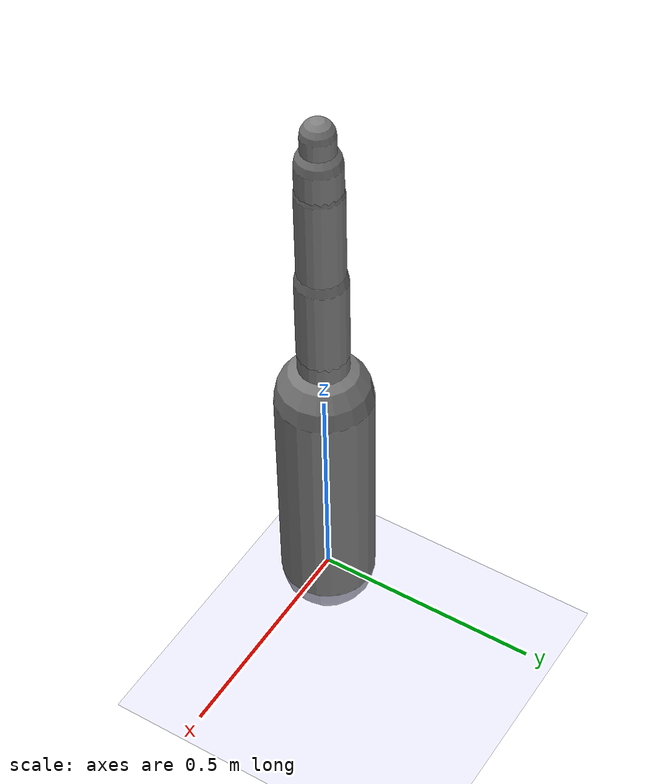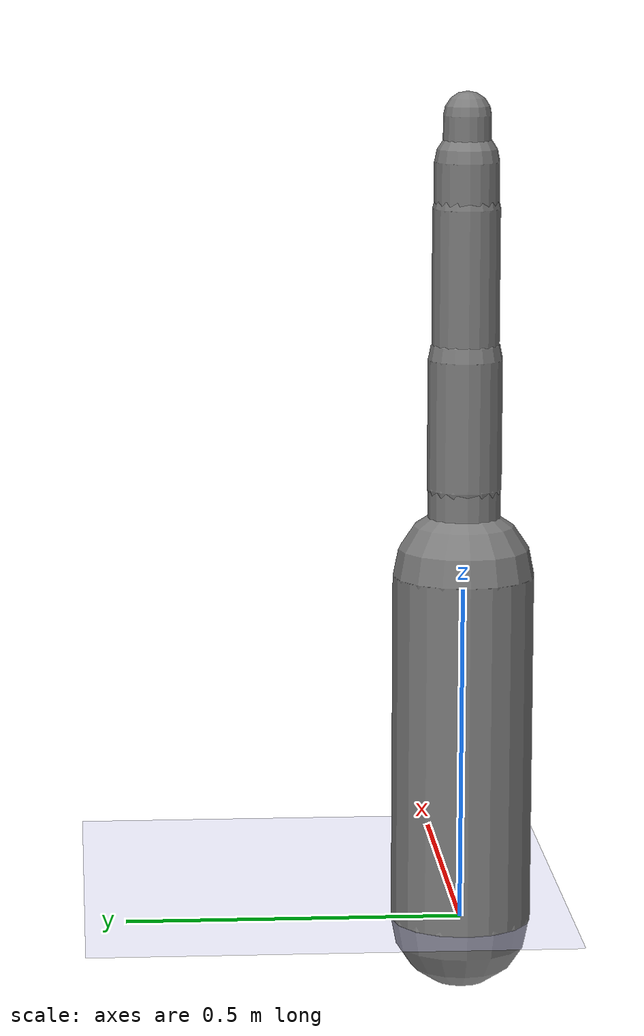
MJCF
<?xml version='1.0' encoding='UTF-8'?>
<mujoco model="robot_model">
  <worldbody>
    <light name="light" pos="0 -3 10" dir="0 0.5 -1" diffuse=".8 .8 .8" specular="0.1 0.1 0.1"/>
    <geom name="floor" type="plane" size="10.0 10.0 0.1" pos="0 0 0" rgba="0.8 0.8 1 1"/>
    <body name="limb0" pos="0 0 0">
      <geom type="capsule" fromto="0 0 0 0 0 0.5231763158945975" size="0.1044002338996304" density="812.2604488337136"/>
      <site type="sphere" size="0.01" name="limb0_site0" pos="0 0 0.023686909147294804"/>
      <site type="sphere" size="0.01" name="limb0_site1" pos="0 0 0.4696436638713048"/>
      <freejoint name="limb0_root"/>
      <body name="limb1" pos="0 0 0.023686909147294804">
        <geom type="capsule" fromto="0 0 0 0 0 0.2533475523142073" size="0.022157228095266258" density="726.7785643359989"/>
        <joint name="joint_limb0_limb1_0" type="hinge" axis="1 0 0" range="-24.875771072716805 24.875771072716805" damping="5.0"/>
      </body>
      <body name="limb2" pos="0 0 0.4696436638713048">
        <geom type="capsule" fromto="0 0 0 0 0 0.2739790208900568" size="0.029380408066792957" density="1179.3489546074043"/>
        <site type="sphere" size="0.01" name="limb2_site0" pos="0 0 0.07437204482819212"/>
        <site type="sphere" size="0.01" name="limb2_site1" pos="0 0 0.10943414208611621"/>
        <body name="limb3" pos="0 0 0.07437204482819212">
          <geom type="capsule" fromto="0 0 0 0 0 0.12432108518322244" size="0.047067574073242635" density="844.4768935365787"/>
          <site type="sphere" size="0.01" name="limb3_site0" pos="0 0 0.1084322870766739"/>
          <body name="limb4" pos="0 0 0.1084322870766739">
            <geom type="capsule" fromto="0 0 0 0 0 0.19092741006436326" size="0.05480354009310013" density="1116.3585915313008"/>
            <site type="sphere" size="0.01" name="limb4_site0" pos="0 0 0.06204045754828538"/>
            <site type="sphere" size="0.01" name="limb4_site1" pos="0 0 0.15253944780773193"/>
            <site type="sphere" size="0.01" name="limb4_site2" pos="0 0 0.0027753743618323277"/>
            <body name="limb5" pos="0 0 0.06204045754828538">
              <geom type="capsule" fromto="0 0 0 0 0 0.2746668208702611" size="0.04013455862214658" density="562.6022688916519"/>
              <joint name="joint_limb4_limb5_0" type="hinge" axis="1 0 0" range="-100.62153310270436 100.62153310270436" damping="5.0"/>
            </body>
            <body name="limb6" pos="0 0 0.15253944780773193">
              <geom type="capsule" fromto="0 0 0 0 0 0.37940479612732436" size="0.025961543341342232" density="758.835280608301"/>
              <joint name="joint_limb4_limb6_0" type="hinge" axis="0 0 1" range="-51.97846543182863 51.97846543182863" damping="5.0"/>
            </body>
            <body name="limb7" pos="0 0 0.0027753743618323277">
              <geom type="capsule" fromto="0 0 0 0 0 0.3025540005686284" size="0.04028272555693565" density="588.9553027166908"/>
              <joint name="joint_limb4_limb7_0" type="hinge" axis="1 0 0" range="-113.32239002254337 113.32239002254337" damping="5.0"/>
            </body>
            <joint name="joint_limb3_limb4_0" type="hinge" axis="0 0 1" range="-21.851721767021075 21.851721767021075" damping="5.0"/>
          </body>
          <joint name="joint_limb2_limb3_0" type="hinge" axis="0 1 0" range="-107.96511733349222 107.96511733349222" damping="5.0"/>
        </body>
        <body name="limb8" pos="0 0 0.10943414208611621">
          <geom type="capsule" fromto="0 0 0 0 0 0.24715229556460672" size="0.05379707205894439" density="1160.8183849566396"/>
          <site type="sphere" size="0.01" name="limb8_site0" pos="0 0 0.11463525533338896"/>
          <site type="sphere" size="0.01" name="limb8_site1" pos="0 0 0.19735687797790924"/>
          <site type="sphere" size="0.01" name="limb8_site2" pos="0 0 0.2325705511597427"/>
          <body name="limb9" pos="0 0 0.11463525533338896">
            <geom type="capsule" fromto="0 0 0 0 0 0.36975588595470515" size="0.04965686680111251" density="947.3641699076786"/>
            <joint name="joint_limb8_limb9_0" type="hinge" axis="0 0 1" range="-84.0940141481311 84.0940141481311" damping="5.0"/>
          </body>
          <body name="limb10" pos="0 0 0.19735687797790924">
            <geom type="capsule" fromto="0 0 0 0 0 0.35415471995628434" size="0.047688890985793195" density="701.2100204701537"/>
            <joint name="joint_limb8_limb10_0" type="hinge" axis="1 0 0" range="-59.04589137977216 59.04589137977216" damping="5.0"/>
          </body>
          <body name="limb11" pos="0 0 0.2325705511597427">
            <geom type="capsule" fromto="0 0 0 0 0 0.38530314564978085" size="0.03521901482573294" density="890.0142433322495"/>
            <joint name="joint_limb8_limb11_0" type="hinge" axis="0 0 1" range="-92.36762546507963 92.36762546507963" damping="5.0"/>
          </body>
          <joint name="joint_limb2_limb8_0" type="hinge" axis="1 0 0" range="-75.61597755338971 75.61597755338971" damping="5.0"/>
        </body>
        <joint name="joint_limb0_limb2_0" type="hinge" axis="0 1 0" range="-104.4231037608741 104.4231037608741" damping="5.0"/>
      </body>
    </body>
  </worldbody>
  <actuator>
    <position name="position_actuator_joint_limb0_limb1_0" joint="joint_limb0_limb1_0" gear="1.998764172597607" inheritrange="1" kp="10.0"/>
    <position name="position_actuator_joint_limb0_limb2_0" joint="joint_limb0_limb2_0" gear="1.0886069965021672" inheritrange="1" kp="10.0"/>
    <position name="position_actuator_joint_limb2_limb3_0" joint="joint_limb2_limb3_0" gear="0.5963216559682865" inheritrange="1" kp="10.0"/>
    <position name="position_actuator_joint_limb3_limb4_0" joint="joint_limb3_limb4_0" gear="1.561243351005766" inheritrange="1" kp="10.0"/>
    <position name="position_actuator_joint_limb4_limb5_0" joint="joint_limb4_limb5_0" gear="0.9746781311067352" inheritrange="1" kp="10.0"/>
    <position name="position_actuator_joint_limb4_limb6_0" joint="joint_limb4_limb6_0" gear="1.6998192890824302" inheritrange="1" kp="10.0"/>
    <position name="position_actuator_joint_limb4_limb7_0" joint="joint_limb4_limb7_0" gear="0.6287386866302449" inheritrange="1" kp="10.0"/>
    <position name="position_actuator_joint_limb2_limb8_0" joint="joint_limb2_limb8_0" gear="0.8602029924541638" inheritrange="1" kp="10.0"/>
    <position name="position_actuator_joint_limb8_limb9_0" joint="joint_limb8_limb9_0" gear="0.6606342442059296" inheritrange="1" kp="10.0"/>
    <position name="position_actuator_joint_limb8_limb10_0" joint="joint_limb8_limb10_0" gear="1.6969008291455314" inheritrange="1" kp="10.0"/>
    <position name="position_actuator_joint_limb8_limb11_0" joint="joint_limb8_limb11_0" gear="1.7132657135520049" inheritrange="1" kp="10.0"/>
  </actuator>
</mujoco>
